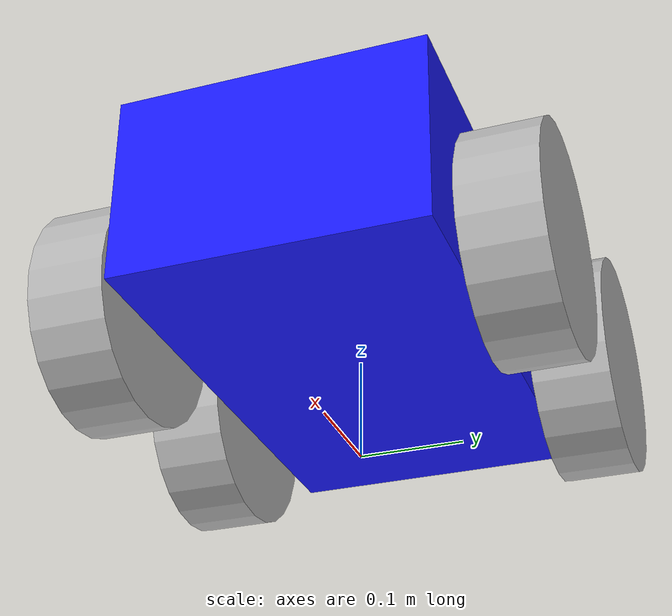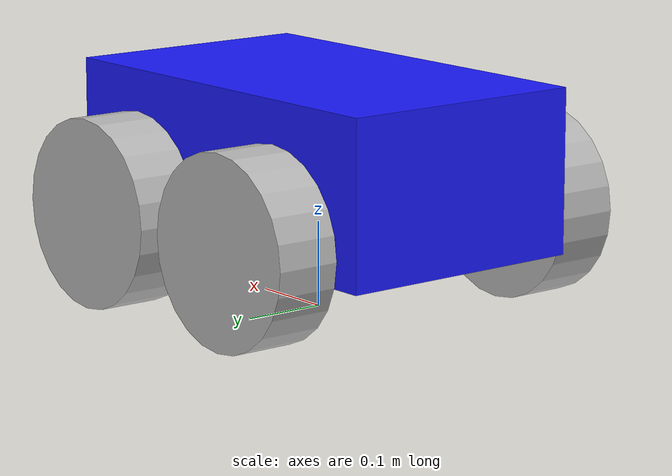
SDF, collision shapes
<sdf version="1.9">
  <model name="pioneer3at">
    <pose>0 0 0 0 0 0</pose>
    <static>false</static>
    <link name="base_footprint">
      <pose>0 0 0.180 0 0 0</pose>
      <inertial>
        <mass>3.5101100000000001</mass>
        <inertia>
          <ixx>0.147116667</ixx>
          <ixy>0.0</ixy>
          <ixz>0.0</ixz>
          <iyy>0.334951167</iyy>
          <iyz>0.0</iyz>
          <izz>0.3978345</izz>
        </inertia>
      </inertial>
      <collision name="collision">
        <geometry>
          <box>
            <size>0.501 0.300 0.19</size>
          </box>
        </geometry>
      </collision>
      <visual name="visual">
        <geometry>
          <mesh>
            <uri>model://pioneer3at/meshes/chassis.dae</uri>
          </mesh>
        </geometry>
      </visual>
      <visual name="kinect_visual">
        <pose>0 0 0.245 0 0 0</pose>
        <geometry>
          <mesh>
            <uri>model://pioneer3at/meshes/kinect.dae</uri>
          </mesh>
        </geometry>
      </visual>
      <visual name="box_visual">
        <pose>-0.03 0 0.145 0 0 0</pose>
        <geometry>
          <box>
            <size>0.1 0.1 0.1</size>
          </box>
        </geometry>
        <material>
            <ambient>0.1 0.1 1.0 1</ambient>
            <diffuse>0.1 0.1 1.0 1</diffuse>
            <specular>0.0 0.0 1.0 1</specular>
          </material>
      </visual>
      <sensor name='pioneer3at_front_laser_sensor' type='gpu_lidar'>
        <pose>0 0 0.20 0 0 0</pose>
        <ignition_frame_id>pioneer3at/front_laser_link</ignition_frame_id>
        <topic>/pioneer3at/front_laser</topic>
        <update_rate>20</update_rate>
        <lidar>
            <scan>
                <horizontal>
                    <samples>541</samples>
                    <resolution>1</resolution>
                    <min_angle>-3.1415926535897932</min_angle>
                    <max_angle>3.1415926535897932</max_angle>
                </horizontal>
            </scan>
            <range>
                <min>0.1</min>
                <max>15.0</max>
                <resolution>0.03</resolution>
            </range>
        </lidar>
        <always_on>1</always_on>
        <visualize>0</visualize>
      </sensor>
    </link>
    <link name="right_front_wheel">
      <pose relative_to='right_front'>0 0 0 1.570796326794896 0 0</pose>

      <inertial>
        <mass>0.51000000000000001</mass>
        <inertia>
          <ixx>0.005240625</ixx>
          <iyy>0.005240625</iyy>
          <izz>0.009075</izz>
          <ixy>0</ixy>
          <ixz>0</ixz>
          <iyz>0</iyz>
        </inertia>
      </inertial>

      <collision name="collision">
        <geometry>
          <cylinder>
            <radius>0.110</radius>
            <length>0.075</length>
          </cylinder>
        </geometry>
        <surface>
            <friction>
              <ode>
                <mu>0.5</mu>
                <mu2>1.0</mu2>
                <fdir1>0 0 1</fdir1>
              </ode>
            </friction>
          </surface>
      </collision>
      <visual name="visual">
        <geometry>
          <mesh>
            <uri>model://pioneer3at/meshes/wheel.dae</uri>
          </mesh>
        </geometry>
      </visual>
    </link>
    <link name="left_front_wheel">
      <pose relative_to='left_front'>0 0 0 1.570796326794896 0 0</pose>

      <inertial>
        <mass>0.51000000000000001</mass>
        <inertia>
          <ixx>0.005240625</ixx>
          <iyy>0.005240625</iyy>
          <izz>0.009075</izz>
          <ixy>0</ixy>
          <ixz>0</ixz>
          <iyz>0</iyz>
        </inertia>
      </inertial>

      <collision name="collision">
        <geometry>
          <cylinder>
            <radius>0.110</radius>
            <length>0.075</length>
          </cylinder>
        </geometry>
        <surface>
            <friction>
              <ode>
                <mu>0.5</mu>
                <mu2>1.0</mu2>
                <fdir1>0 0 1</fdir1>
              </ode>
            </friction>
          </surface>
      </collision>
      <visual name="visual">

        <geometry>
          <mesh>
            <uri>model://pioneer3at/meshes/wheel.dae</uri>
          </mesh>
        </geometry>
      </visual>
    </link>
    <link name="right_rear_wheel">
      <pose relative_to='right_rear'>0 0 0 1.570796326794896 0 0</pose>

      <inertial>
        <mass>0.51000000000000001</mass>
        <inertia>
          <ixx>0.005240625</ixx>
          <iyy>0.005240625</iyy>
          <izz>0.009075</izz>
          <ixy>0</ixy>
          <ixz>0</ixz>
          <iyz>0</iyz>
        </inertia>
      </inertial>

      <collision name="collision">

        <geometry>
          <cylinder>
            <radius>0.110</radius>
            <length>0.075</length>
          </cylinder>
        </geometry>
        <surface>
            <friction>
              <ode>
                <mu>0.5</mu>
                <mu2>1.0</mu2>
                <fdir1>0 0 1</fdir1>
              </ode>
            </friction>
          </surface>
      </collision>
      <visual name="visual">
        <geometry>
          <mesh>
            <uri>model://pioneer3at/meshes/wheel.dae</uri>
          </mesh>
        </geometry>
      </visual>
    </link>
    <link name="left_rear_wheel">
      <pose relative_to='left_rear'>0 0 0 1.570796326794896 0 0</pose>

      <inertial>
        <mass>0.51000000000000001</mass>
        <inertia>
          <ixx>0.005240625</ixx>
          <iyy>0.005240625</iyy>
          <izz>0.009075</izz>
          <ixy>0</ixy>
          <ixz>0</ixz>
          <iyz>0</iyz>
        </inertia>
      </inertial>

      <collision name="collision">

        <geometry>
          <cylinder>
            <radius>0.110</radius>
            <length>0.075</length>
          </cylinder>
        </geometry>
        <surface>
            <friction>
              <ode>
                <mu>0.5</mu>
                <mu2>1.0</mu2>
                <fdir1>0 0 1</fdir1>
              </ode>
            </friction>
          </surface>
      </collision>
      <visual name="visual">
        <geometry>
          <mesh>
            <uri>model://pioneer3at/meshes/wheel.dae</uri>
          </mesh>
        </geometry>
      </visual>
    </link>
    <joint type="revolute" name="right_front">
      <pose relative_to='base_footprint'>0.125 -0.201 -0.06 0 0 0</pose>
      <child>right_front_wheel</child>
      <parent>base_footprint</parent>
      <axis>
        <xyz>0 1 0</xyz>
        <limit>
          <effort>100</effort>
          <velocity>100</velocity>
          <lower>-10000000000000000</lower>
          <upper>10000000000000000</upper>
        </limit>
        <dynamics>
          <spring_reference>0</spring_reference>
          <spring_stiffness>0</spring_stiffness>
        </dynamics>
      </axis>
    </joint>
    <joint type="revolute" name="right_rear">
      <pose relative_to='base_footprint'>-0.125 -0.201 -0.06 0 0 0</pose>
      <child>right_rear_wheel</child>
      <parent>base_footprint</parent>
      <axis>
        <xyz>0 1 0</xyz>
        <limit>
          <effort>100</effort>
          <velocity>100</velocity>
          <lower>-10000000000000000</lower>
          <upper>10000000000000000</upper>
        </limit>
        <dynamics>
          <spring_reference>0</spring_reference>
          <spring_stiffness>0</spring_stiffness>
        </dynamics>
      </axis>
    </joint>
    <joint type="revolute" name="left_front">
      <pose relative_to='base_footprint'>0.125 0.201 -0.06 0 0 0</pose>
      <child>left_front_wheel</child>
      <parent>base_footprint</parent>
      <axis>
        <xyz>0 1 0</xyz>
        <limit>
          <effort>100</effort>
          <velocity>100</velocity>
          <lower>-10000000000000000</lower>
          <upper>10000000000000000</upper>
        </limit>
        <dynamics>
          <spring_reference>0</spring_reference>
          <spring_stiffness>0</spring_stiffness>
        </dynamics>
      </axis>
    </joint>
    <joint type="revolute" name="left_rear">
      <pose relative_to='base_footprint'>-0.125 0.201 -0.06 0 0 0</pose>
      <child>left_rear_wheel</child>
      <parent>base_footprint</parent>
      <axis>
        <xyz>0 1 0</xyz>
        <limit>
          <effort>100</effort>
          <velocity>100</velocity>
          <lower>-10000000000000000</lower>
          <upper>10000000000000000</upper>
        </limit>
        <dynamics>
          <spring_reference>0</spring_reference>
          <spring_stiffness>0</spring_stiffness>
        </dynamics>
      </axis>
    </joint>
    <plugin
        filename="ignition-gazebo-diff-drive-system"
        name="ignition::gazebo::systems::DiffDrive">
        <left_joint>left_front</left_joint>
        <left_joint>left_rear</left_joint>
        <right_joint>right_front</right_joint>
        <right_joint>right_rear</right_joint>
        <wheel_separation>0.402</wheel_separation>
        <wheel_radius>0.110</wheel_radius>
        <odom_publish_frequency>20</odom_publish_frequency>
        <max_linear_acceleration>2.5</max_linear_acceleration>
        <min_linear_acceleration>-2.5</min_linear_acceleration>
        <max_angular_acceleration>3.2</max_angular_acceleration>
        <min_angular_acceleration>-3.2</min_angular_acceleration>
        <max_linear_velocity>0.5</max_linear_velocity>
        <min_linear_velocity>-0.5</min_linear_velocity>
        <max_angular_velocity>1</max_angular_velocity>
        <min_angular_velocity>-1</min_angular_velocity>
        <topic>pioneer3at/cmd_vel</topic>
      	<odom_topic>pioneer3at/odom</odom_topic>
      	<tf_topic>pioneer3at/tf</tf_topic>
      	<frame_id>pioneer3at/odom</frame_id>
        <child_frame_id>pioneer3at/base_footprint</child_frame_id>
      </plugin>
  </model>
</sdf>
